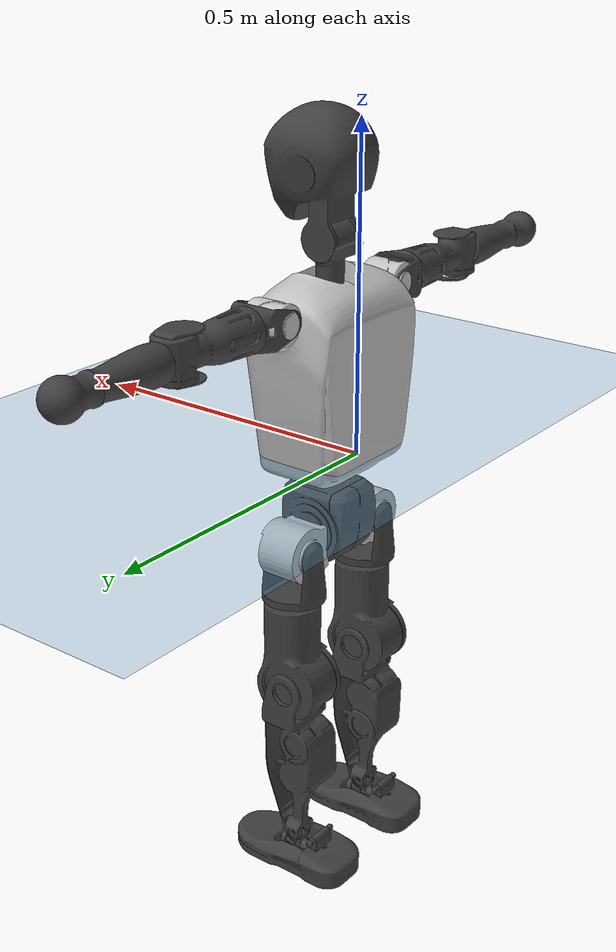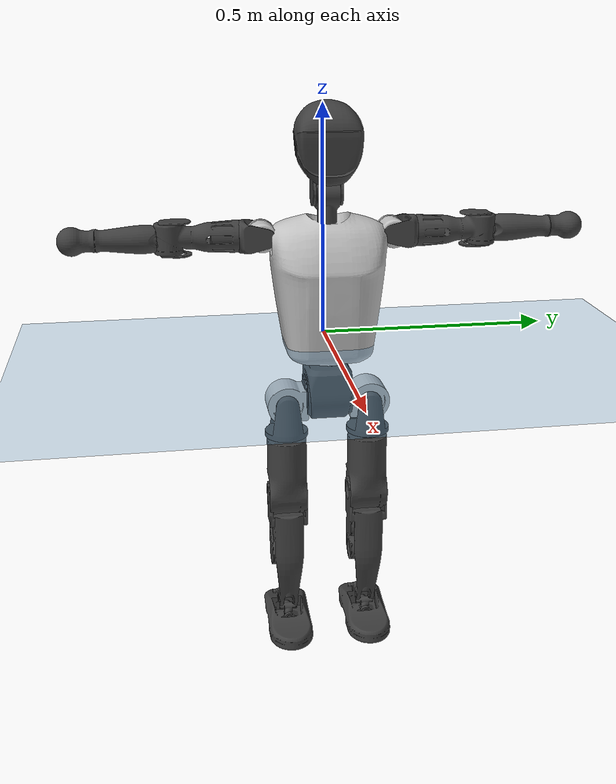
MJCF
<mujoco model="T1">
  <compiler angle="radian" assetdir="assets" balanceinertia="true" inertiafromgeom="false"/>

  <option timestep="0.005" density="1.2" viscosity="2e-05"/>

  <size nkey="1"/>

  <visual>
    <quality shadowsize="8192"/>
    <map shadowclip="0.5"/>
  </visual>

  <default>
    <default class="/">
      <joint armature="0.01" damping="0.01" frictionloss="0.1"/>
      <geom contype="0" conaffinity="0" group="1" solref="-1000 -80"/>
      <site size="0.01 0.005 0.005" group="5"/>
      <general forcelimited="true" biastype="affine" gainprm="25" biasprm="0 -25 -0.6"/>
      <default class="t1">
        <geom rgba="0.25 0.25 0.25 1"/>
        <default class="visual">
          <geom type="mesh" group="2"/>
        </default>
        <default class="collision">
          <geom group="3"/>
        </default>
        <default class="foot">
          <geom size="0.1115 0.05 0.015" type="box" condim="6" group="4" priority="1" solimp="0.015 1 0.015"/>
        </default>
        <default class="reward_collision_sphere">
          <geom group="5" rgba="1 0 0 1"/>
        </default>
      </default>
    </default>
  </default>

  <asset>
    <texture type="skybox" colorspace="auto" name="//unnamed_texture_0" builtin="gradient" rgb1="0.95 0.95 0.95" rgb2="0.95 0.95 0.95" width="100" height="600"/>
    <texture type="2d" colorspace="auto" name="texplane" builtin="checker" rgb1="0.345 0.575 0.748" rgb2="0.345 0.575 0.748" markrgb="1 1 1" width="512" height="512"/>
    <material name="MatPlane" class="/" texture="texplane" texuniform="true" texrepeat="2 2" specular="0.9"/>
    <mesh name="Trunk" class="/" file="Trunk.stl"/>
    <mesh name="H1" class="/" file="H1.stl"/>
    <mesh name="H2" class="/" file="H2.stl"/>
    <mesh name="AL1" class="/" file="AL1.stl"/>
    <mesh name="AL2" class="/" file="AL2.stl"/>
    <mesh name="AL3" class="/" file="AL3.stl"/>
    <mesh name="left_hand_link" class="/" file="left_hand_link.stl"/>
    <mesh name="AR1" class="/" file="AR1.stl"/>
    <mesh name="AR2" class="/" file="AR2.stl"/>
    <mesh name="AR3" class="/" file="AR3.stl"/>
    <mesh name="right_hand_link" class="/" file="right_hand_link.stl"/>
    <mesh name="Waist" class="/" file="Waist.stl"/>
    <mesh name="Hip_Pitch_Left" class="/" file="Hip_Pitch_Left.stl"/>
    <mesh name="Hip_Roll_Left" class="/" file="Hip_Roll_Left.stl"/>
    <mesh name="Hip_Yaw_Left" class="/" file="Hip_Yaw_Left.stl"/>
    <mesh name="Shank_Left" class="/" file="Shank_Left.stl"/>
    <mesh name="Ankle_Cross_Left" class="/" file="Ankle_Cross_Left.stl"/>
    <mesh name="left_foot_link" class="/" file="left_foot_link.stl"/>
    <mesh name="Hip_Pitch_Right" class="/" file="Hip_Pitch_Right.stl"/>
    <mesh name="Hip_Roll_Right" class="/" file="Hip_Roll_Right.stl"/>
    <mesh name="Hip_Yaw_Right" class="/" file="Hip_Yaw_Right.stl"/>
    <mesh name="Shank_Right" class="/" file="Shank_Right.stl"/>
    <mesh name="Ankle_Cross_Right" class="/" file="Ankle_Cross_Right.stl"/>
    <mesh name="right_foot_link" class="/" file="right_foot_link.stl"/>
  </asset>

  <worldbody>
    <geom name="floor" class="/" size="100 100 0.125" type="plane" group="0" material="MatPlane"/>
    <light name="toplight_shadow" class="/" pos="0 0 5" dir="0.0990148 0.0990148 -0.990148" type="directional" ambient="0.04 0.04 0.04" diffuse="0.55 0.55 0.55" specular="0.12 0.12 0.12"/>
    <light name="toplight_fill" class="/" pos="0 0 5" dir="0.0990148 0.0990148 -0.990148" type="directional" castshadow="false" ambient="0.04 0.04 0.04" diffuse="0.3 0.3 0.3" specular="0.08 0.08 0.08"/>
    <body name="trunk" childclass="t1" pos="0.000329337 0.000641182 -0.000755753" quat="1 -0.000348358 0.000221054 -7.54057e-05">
      <inertial pos="0.0459946 -0.000403067 0.111295" quat="0.999956 0.00178523 -0.0091854 -0.000263322" mass="9.24962" diaginertia="0.0376283 0.0387105 0.0755823"/>
      <joint name="//unnamed_joint_0" type="free" armature="0" damping="0" frictionloss="0"/>
      <geom name="//unnamed_geom_1" class="visual" rgba="0.76 0.76 0.76 1" mesh="Trunk"/>
      <geom name="//unnamed_geom_2" class="collision" size="0.0692969 0.0923959 0.138594" pos="0.0502191 0 0.127596" type="box"/>
      <geom name="//unnamed_geom_3" class="reward_collision_sphere" size="0.106255" pos="0.0502191 0 0.10633"/>
      <geom name="//unnamed_geom_4" class="reward_collision_sphere" size="0.0138594" pos="0.0502191 0.0740852 0"/>
      <geom name="//unnamed_geom_5" class="reward_collision_sphere" size="0.0138594" pos="0.0502191 -0.0740852 0"/>
      <geom name="//unnamed_geom_6" class="reward_collision_sphere" size="0.0138594" pos="0.0502191 0.0932602 0.191394"/>
      <geom name="//unnamed_geom_7" class="reward_collision_sphere" size="0.0138594" pos="0.0502191 -0.0932602 0.191394"/>
      <site name="imu" pos="0.00440331 0.00106747 -0.000860984" size="0.00923959"/>
      <camera name="track" pos="0 -1.74318 0" quat="0.707107 0.707107 0 0" mode="trackcom"/>
      <camera name="ego_camera" pos="0.102112 0 0.446586" quat="-0.5 -0.5 0.5 0.5"/>
      <body name="H1" pos="0.0521279 -0.000533496 0.258082" quat="1 -0.000176448 0.000113846 -0.000316566">
        <inertial pos="-0.00158628 -0.00161487 0.060185" quat="0.763808 -0.0118042 0.00456815 0.645319" mass="0.353613" diaginertia="0.00010028 0.000111894 0.000207194"/>
        <joint name="AAHead_yaw" pos="0 0 0" axis="-0.000505226 0.000777199 1" range="-1.55275 1.57794" armature="0.00890385" damping="0.00835494" frictionloss="0.0962681"/>
        <geom name="//unnamed_geom_8" class="visual" mesh="H1"/>
        <body name="H2" pos="-0.00111224 -0.000569462 0.0657598" quat="1 5.13904e-06 4.69866e-06 2.53778e-05">
          <inertial pos="0.00574471 0.000287164 0.104927" quat="0.9886 0.104152 -0.075735 -0.0780189" mass="0.502532" diaginertia="0.000840798 0.000969181 0.00235826"/>
          <joint name="Head_pitch" pos="0 0 0" axis="0.000856757 -0.999996 -0.00282158" range="-1.22906 0.336684" armature="0.00944289" damping="0.00607062" frictionloss="0.0930934"/>
          <geom name="//unnamed_geom_9" class="visual" mesh="H2"/>
          <geom name="//unnamed_geom_10" class="collision" size="0.0739167" pos="0.00836985 0 0.116963"/>
          <geom name="//unnamed_geom_11" class="reward_collision_sphere" size="0.0831563" pos="0.0167397 0 0.10633"/>
        </body>
      </body>
      <body name="AL1" pos="0.0486749 0.0937662 0.233433" quat="1 -7.85176e-05 0.000467325 -0.000241886">
        <inertial pos="-0.000577595 0.0393608 -0.000417723" quat="0.504216 0.495766 -0.504387 0.495557" mass="0.422813" diaginertia="0.000567732 0.000659526 0.000400307"/>
        <joint name="Left_Shoulder_Pitch" pos="0 0 0" axis="-0.000400767 1 -7.34242e-06" range="-3.30783 1.22505" armature="0.0090437" damping="0.00535164" frictionloss="0.0930375"/>
        <geom name="//unnamed_geom_12" class="visual" rgba="0.76 0.76 0.76 1" mesh="AL1"/>
        <body name="AL2" pos="0.00107196 0.0421545 0.000776704" quat="1 -0.000280992 -0.000128091 -0.00023833">
          <inertial pos="0.00282261 0.0323161 -0.000196283" quat="0.487996 0.511877 -0.487754 0.511799" mass="0.127386" diaginertia="0.000164698 0.000175326 0.000241944"/>
          <joint name="Left_Shoulder_Roll" pos="0 0 0" axis="-0.999999 -0.00104096 0.000169719" range="-1.57486 1.733" armature="0.00938508" damping="0.00386281" frictionloss="0.0916634"/>
          <geom name="//unnamed_geom_13" class="visual" mesh="AL2"/>
          <body name="AL3" pos="5.52255e-05 0.0537157 -6.07876e-05" quat="1 -4.81955e-05 7.67252e-06 -2.1255e-05">
            <inertial pos="-0.000308275 0.0748742 -0.000133051" quat="0.706414 0.707787 -0.00352165 0.00205952" mass="0.819433" diaginertia="0.00534069 0.00646004 0.000846403"/>
            <joint name="Left_Elbow_Pitch" pos="0 0 0" axis="-0.00347747 -0.999993 0.00159587" range="-2.25915 2.26185" armature="0.00925082" damping="0.00433248" frictionloss="0.0888532"/>
            <geom name="//unnamed_geom_14" class="visual" mesh="AL3"/>
            <geom name="//unnamed_geom_15" class="collision" size="0.0277188 0.0692969" pos="0 0.0435795 0" quat="0.707105 0.707108 0 0" type="cylinder"/>
            <geom name="//unnamed_geom_16" class="reward_collision_sphere" size="0.0332625"/>
            <body name="left_hand_link" pos="-0.000261567 0.128722 0.000523697" quat="1 0.000374547 -0.000252166 -0.000152262">
              <inertial pos="-5.43135e-05 0.0958558 0.00101077" quat="0.708049 0.706163 -0.00026321 -0.000448231" mass="0.255495" diaginertia="0.0033266 0.00407371 0.000293897"/>
              <joint name="Left_Elbow_Yaw" pos="0 0 0" axis="0.000153521 0.00211257 0.999998" range="-2.4446 0.00459944" armature="0.00910501" damping="0.0112389" frictionloss="0.0885025"/>
              <geom name="//unnamed_geom_17" class="visual" mesh="left_hand_link"/>
              <geom name="//unnamed_geom_18" class="collision" size="0.0277188 0.0808464" pos="0 0.113307 0" quat="0.707105 0.707108 0 0" type="cylinder"/>
              <geom name="//unnamed_geom_19" class="reward_collision_sphere" size="0.0461979"/>
              <geom name="//unnamed_geom_20" class="reward_collision_sphere" size="0.0323386" pos="0 0.095875 0"/>
              <geom name="//unnamed_geom_21" class="reward_collision_sphere" size="0.0323386" pos="0 0.187392 0"/>
            </body>
          </body>
        </body>
      </body>
      <body name="AR1" pos="0.0473816 -0.0920868 0.2327" quat="1 0.000207003 0.000277413 -1.60809e-05">
        <inertial pos="-0.00120839 -0.0393543 -0.000117166" quat="0.50478 0.495712 -0.503818 0.495615" mass="0.418059" diaginertia="0.000569973 0.000653286 0.000396468"/>
        <joint name="Right_Shoulder_Pitch" pos="0 0 0" axis="0.0002936 -0.999997 -0.00257937" stiffness="0.0008581" range="-1.23272 3.30835" armature="0.00964424" damping="0.00637745" frictionloss="0.0946082"/>
        <geom name="//unnamed_geom_22" class="visual" rgba="0.76 0.76 0.76 1" mesh="AR1"/>
        <body name="AR2" pos="-0.000985767 -0.0408729 -7.55133e-05" quat="1 -9.0948e-06 -5.05706e-05 2.52164e-05">
          <inertial pos="0.00311391 -0.0331177 0.000374253" quat="0.510522 0.491373 -0.511324 0.48628" mass="0.125587" diaginertia="0.000167216 0.00017415 0.000242318"/>
          <joint name="Right_Shoulder_Roll" pos="0 0 0" axis="-0.999989 0.000143625 0.00478039" range="-1.74562 1.56716" armature="0.00926406" damping="0.0060132" frictionloss="0.0925667"/>
          <geom name="//unnamed_geom_23" class="visual" mesh="AR2"/>
          <body name="AR3" pos="-0.00116602 -0.0528662 0.000801978" quat="1 -4.13137e-05 -6.23801e-05 1.79937e-05">
            <inertial pos="-0.000554284 -0.073691 -0.000114246" quat="0.707805 0.706408 5.7354e-06 1.15016e-05" mass="0.801537" diaginertia="0.00529131 0.00636979 0.000835639"/>
            <joint name="Right_Elbow_Pitch" pos="0 0 0" axis="-3.36439e-05 0.999999 0.00101915" range="-2.26779 2.26884" armature="0.00924304" damping="0.00889895" frictionloss="0.0928293"/>
            <geom name="//unnamed_geom_24" class="visual" mesh="AR3"/>
            <geom name="//unnamed_geom_25" class="collision" size="0.0277188 0.0692969" pos="0 -0.0435795 0" quat="0.707105 0.707108 0 0" type="cylinder"/>
            <geom name="//unnamed_geom_26" class="reward_collision_sphere" size="0.0332625"/>
            <body name="right_hand_link" pos="-0.0002027 -0.128201 -0.000412936" quat="1 0.000168445 0.000209933 -0.000174813">
              <inertial pos="-0.000895173 -0.095134 0.000517954" quat="0.706482 0.707728 0.000543064 0.00182856" mass="0.260819" diaginertia="0.00335401 0.00408716 0.000288914"/>
              <joint name="Right_Elbow_Yaw" pos="0 0 0" axis="-0.00488816 0.000961129 0.999988" range="0.000574903 2.44595" armature="0.00905035" damping="0.0075704" frictionloss="0.0939118"/>
              <geom name="//unnamed_geom_27" class="visual" mesh="right_hand_link"/>
              <geom name="//unnamed_geom_28" class="collision" size="0.0277188 0.0808464" pos="0 -0.113307 0" quat="0.707105 0.707108 0 0" type="cylinder"/>
              <geom name="//unnamed_geom_29" class="reward_collision_sphere" size="0.0461979"/>
              <geom name="//unnamed_geom_30" class="reward_collision_sphere" size="0.0323386" pos="0 -0.095875 0"/>
              <geom name="//unnamed_geom_31" class="reward_collision_sphere" size="0.0323386" pos="0 -0.187392 0"/>
            </body>
          </body>
        </body>
      </body>
      <body name="Waist" pos="0.0522608 -0.000852882 -0.122281" quat="1 -7.87446e-05 9.74426e-05 -0.000369922">
        <inertial pos="0.00221581 -0.000520132 0.00704473" quat="0.983875 0.00360457 -0.178778 0.00398708" mass="2.06035" diaginertia="0.00222419 0.00267478 0.0064593"/>
        <joint name="Waist" pos="0 0 0" axis="0.00165064 0.000290372 0.999999" range="-1.57132 1.57676" armature="0.00918583" damping="0.010444" frictionloss="0.094585"/>
        <geom name="//unnamed_geom_32" class="visual" mesh="Waist"/>
        <body name="Hip_Pitch_Left" pos="-0.000297836 0.092228 0.000492211" quat="1 -5.33251e-05 0.000100407 0.000196257">
          <inertial pos="0.00123706 -0.00718008 -0.0193315" quat="0.975212 0.220674 0.0162493 0.00118964" mass="0.79642" diaginertia="0.000738718 0.000735741 0.00169815"/>
          <joint name="Left_Hip_Pitch" pos="0 0 0" axis="-0.000730847 1 -0.000155344" range="-1.80022 1.56882" armature="0.00934315" damping="0.00632367" frictionloss="0.0905322"/>
          <geom name="//unnamed_geom_33" class="visual" rgba="0.76 0.76 0.76 1" mesh="Hip_Pitch_Left"/>
          <body name="Hip_Roll_Left" pos="-0.000175873 0.000238 -0.0216126" quat="1 -0.000319315 0.000102512 0.000204574">
            <inertial pos="0.00198293 -0.000533274 -0.0572082" quat="0.708895 -0.00547451 -0.00927121 0.705232" mass="0.301159" diaginertia="0.000711655 0.00076152 0.000691791"/>
            <joint name="Left_Hip_Roll" pos="0 0 0" axis="-0.999997 0.00200332 -0.00104563" stiffness="0.00189498" range="-1.57247 0.193203" armature="0.00912525" damping="0.0106412" frictionloss="0.0962997"/>
            <geom name="//unnamed_geom_34" class="visual" mesh="Hip_Roll_Left"/>
            <geom name="//unnamed_geom_35" class="reward_collision_sphere" size="0.0508177"/>
            <body name="Hip_Yaw_Left" pos="0.00165755 -0.000810752 -0.088196" quat="1 -1.36838e-05 3.35066e-05 -1.14969e-05">
              <inertial pos="-0.00558885 -0.000542081 -0.0950759" quat="0.696647 -0.0349104 -0.0318953 0.715854" mass="1.73739" diaginertia="0.0106447 0.0128917 0.0035568"/>
              <joint name="Left_Hip_Yaw" pos="0 0 0" axis="-0.0028214 -0.00101072 -0.999996" stiffness="0.00196398" range="-1.01678 1.02012" armature="0.00935529" damping="0.00871167" frictionloss="0.0930166"/>
              <geom name="//unnamed_geom_36" class="visual" mesh="Hip_Yaw_Left"/>
              <geom name="//unnamed_geom_37" class="collision" size="0.0461979 0.0739167" type="cylinder"/>
              <body name="Shank_Left" pos="-0.0119511 0.000135982 -0.142568" quat="1 -8.31926e-05 2.40782e-05 -2.02689e-05">
                <inertial pos="-0.00462052 0.000313166 -0.132238" quat="0.997606 0.00121703 -0.0240657 0.064813" mass="1.36976" diaginertia="0.0144078 0.0173711 0.00255133"/>
                <joint name="Left_Knee_Pitch" pos="0 0 0" axis="-0.00153064 0.999999 0.000388068" range="-0.0160947 2.34227" armature="0.00926219" damping="0.00505295" frictionloss="0.0965445"/>
                <geom name="//unnamed_geom_38" class="visual" mesh="Shank_Left"/>
                <geom name="//unnamed_geom_39" class="collision" size="0.0461979 0.0692969" pos="0 0 -0.127596" type="cylinder"/>
                <geom name="//unnamed_geom_40" class="reward_collision_sphere" size="0.0600573"/>
                <body name="Ankle_Cross_Left" pos="7.90491e-05 0.000352415 -0.297022" quat="1 -2.03594e-05 7.84298e-05 5.47388e-05">
                  <inertial pos="-0.00268371 0.000365577 -0.00936491" quat="0.442333 0.549777 0.552262 0.443952" mass="0.0576413" diaginertia="1.16948e-05 1.27071e-05 1.52527e-05"/>
                  <joint name="Left_Ankle_Pitch" pos="0 0 0" axis="0.000425345 0.999998 0.00212831" range="-0.866494 0.340155" armature="0.00923533" damping="0.00586378" frictionloss="0.0951922"/>
                  <geom name="//unnamed_geom_41" class="visual" mesh="Ankle_Cross_Left"/>
                  <body name="left_foot_link" pos="-0.000405316 -0.000875373 -0.0130071" quat="1 6.23086e-05 4.57379e-05 -0.000263266">
                    <inertial pos="-0.000249614 0.000286604 -0.00943415" quat="0.00059422 0.618527 -0.000678956 0.785763" mass="0.537979" diaginertia="0.00109969 0.00119131 0.00297818"/>
                    <joint name="Left_Ankle_Roll" pos="0 0 0" axis="-0.999994 0.000349887 -0.0034041" range="-0.445803 0.455428" armature="0.00925182" damping="0.0109382" frictionloss="0.0918215"/>
                    <geom name="//unnamed_geom_42" class="visual" mesh="left_foot_link"/>
                    <geom name="left_foot" class="foot" size="0.101854 0.0471839 0.0138111" pos="0.00836985 0 -0.0159495"/>
                    <geom name="//unnamed_geom_44" class="reward_collision_sphere" size="0.0480458" pos="0.00836985 0 -0.0159495"/>
                    <geom name="//unnamed_geom_45" class="reward_collision_sphere" size="0.0277188" pos="0.0795135 -0.0200466 -0.0159495"/>
                    <geom name="//unnamed_geom_46" class="reward_collision_sphere" size="0.0277188" pos="-0.0585889 -0.0200466 -0.0159495"/>
                    <site name="left_foot" class="foot" pos="0.00836985 0 -0.0159495" size="0.00923959"/>
                  </body>
                </body>
              </body>
            </body>
          </body>
        </body>
        <body name="Hip_Pitch_Right" pos="0.000273112 -0.0920276 -0.000351161" quat="1 -3.01864e-05 -0.000118489 -0.000148393">
          <inertial pos="0.00126405 0.00630697 -0.0195789" quat="0.973687 -0.227359 0.0151883 -0.00322074" mass="0.795851" diaginertia="0.000733754 0.000726045 0.0016702"/>
          <joint name="Right_Hip_Pitch" pos="0 0 0" axis="0.000191622 -0.999998 0.00183053" range="-1.57254 1.80307" armature="0.00936914" damping="0.00996819" frictionloss="0.0886062"/>
          <geom name="//unnamed_geom_47" class="visual" rgba="0.76 0.76 0.76 1" mesh="Hip_Pitch_Right"/>
          <body name="Hip_Roll_Right" pos="-0.000525627 -0.000482785 -0.0205907" quat="1 -0.000180795 0.00016857 0.000100676">
            <inertial pos="0.0016455 0.00062903 -0.0564021" quat="0.7088 -0.00715649 -0.00828 0.705325" mass="0.302984" diaginertia="0.000716055 0.000764806 0.000703769"/>
            <joint name="Right_Hip_Roll" pos="0 0 0" axis="-0.999996 -0.00196186 0.001871" stiffness="0.00128133" range="-0.18399 1.56007" armature="0.00887794" damping="0.00593936" frictionloss="0.095752"/>
            <geom name="//unnamed_geom_48" class="visual" mesh="Hip_Roll_Right"/>
            <geom name="//unnamed_geom_49" class="reward_collision_sphere" size="0.0508177"/>
            <body name="Hip_Yaw_Right" pos="0.0006848 0.000156962 -0.0872982" quat="1 6.1709e-05 -3.02962e-05 7.77285e-05">
              <inertial pos="-0.00572293 -3.17347e-05 -0.0947132" quat="0.714538 -0.0320172 -0.0358685 0.697942" mass="1.71802" diaginertia="0.0106675 0.0126499 0.00353971"/>
              <joint name="Right_Hip_Yaw" pos="0 0 0" axis="-0.00212266 -1.63113e-05 -0.999998" range="-1.01322 0.999767" armature="0.0090466" damping="0.0119841" frictionloss="0.0902643"/>
              <geom name="//unnamed_geom_50" class="visual" mesh="Hip_Yaw_Right"/>
              <geom name="//unnamed_geom_51" class="collision" size="0.0461979 0.0739167" type="cylinder"/>
              <body name="Shank_Right" pos="-0.0111572 -5.40669e-05 -0.142161" quat="1 7.6192e-06 -5.69707e-06 3.33276e-06">
                <inertial pos="-0.00495133 0.000694475 -0.130357" quat="0.9993 -0.00432621 -0.0222572 -0.0297517" mass="1.41898" diaginertia="0.0146754 0.0176982 0.00271274"/>
                <joint name="Right_Knee_Pitch" pos="0 0 0" axis="0.00462286 -0.999989 0.000465588" range="-2.34061 -0.00646679" armature="0.00944475" damping="0.00640209" frictionloss="0.0896091"/>
                <geom name="//unnamed_geom_52" class="visual" mesh="Shank_Right"/>
                <geom name="//unnamed_geom_53" class="collision" size="0.0461979 0.0692969" pos="0 0 -0.127596" type="cylinder"/>
                <geom name="//unnamed_geom_54" class="reward_collision_sphere" size="0.0600573"/>
                <body name="Ankle_Cross_Right" pos="-0.000585416 -0.000671729 -0.297262" quat="1 -0.000157604 8.34126e-05 -0.000172109">
                  <inertial pos="-0.0028852 -0.000518438 -0.00840357" quat="0.44091 0.553245 0.549767 0.444157" mass="0.0581251" diaginertia="1.17965e-05 1.29342e-05 1.55794e-05"/>
                  <joint name="Right_Ankle_Pitch" pos="0 0 0" axis="0.00241627 -0.999991 0.00338087" stiffness="0.0006362" range="-0.349693 0.864263" armature="0.00942786" damping="0.0060839" frictionloss="0.0933784"/>
                  <geom name="//unnamed_geom_55" class="visual" mesh="Ankle_Cross_Right"/>
                  <body name="right_foot_link" pos="0.000103972 -0.000305201 -0.0135903" quat="1 1.30868e-05 -1.71261e-05 0.000103084">
                    <inertial pos="0.000311832 -0.000140859 -0.0105784" quat="-0.00166216 0.622865 0.00192358 0.782325" mass="0.538231" diaginertia="0.00111721 0.00120306 0.00299464"/>
                    <joint name="Right_Ankle_Roll" pos="0 0 0" axis="-1 0.000101653 -0.000751598" range="-0.441414 0.442051" armature="0.0092108" damping="0.00845339" frictionloss="0.0920801"/>
                    <geom name="//unnamed_geom_56" class="visual" mesh="right_foot_link"/>
                    <geom name="right_foot" class="foot" size="0.100097 0.0466056 0.0144452" pos="0.00836985 0 -0.0159495"/>
                    <geom name="//unnamed_geom_58" class="reward_collision_sphere" size="0.0369583"/>
                    <geom name="//unnamed_geom_59" class="reward_collision_sphere" size="0.0277188" pos="0.00836985 0 -0.0159495"/>
                    <geom name="//unnamed_geom_60" class="reward_collision_sphere" size="0.0277188" pos="0.0795135 0.0200466 -0.0159495"/>
                    <geom name="//unnamed_geom_61" class="reward_collision_sphere" size="0.0277188" pos="-0.0585889 0.0200466 -0.0159495"/>
                    <site name="right_foot" class="foot" pos="0.00836985 0 -0.0159495" size="0.00923959"/>
                  </body>
                </body>
              </body>
            </body>
          </body>
        </body>
      </body>
    </body>
  </worldbody>

  <contact>
    <pair class="/" geom1="floor" geom2="left_foot" name="//unnamed_contact_0"/>
    <pair class="/" geom1="floor" geom2="right_foot" name="//unnamed_contact_1"/>
  </contact>

  <actuator>
    <general name="AAHead_yaw" class="/" joint="AAHead_yaw" forcerange="-6.54579 6.54579" gainprm="22.9049" biasprm="0 -22.9049 -0.552339"/>
    <general name="Head_pitch" class="/" joint="Head_pitch" forcerange="-6.43232 6.43232" gainprm="22.9049" biasprm="0 -22.9049 -0.552339"/>
    <general name="Left_Shoulder_Pitch" class="/" joint="Left_Shoulder_Pitch" forcerange="-16.6384 16.6384" gainprm="22.9049" biasprm="0 -22.9049 -0.552339"/>
    <general name="Left_Shoulder_Roll" class="/" joint="Left_Shoulder_Roll" forcerange="-16.5372 16.5372" gainprm="22.9049" biasprm="0 -22.9049 -0.552339"/>
    <general name="Left_Elbow_Pitch" class="/" joint="Left_Elbow_Pitch" forcerange="-16.2622 16.2622" gainprm="22.9049" biasprm="0 -22.9049 -0.552339"/>
    <general name="Left_Elbow_Yaw" class="/" joint="Left_Elbow_Yaw" forcerange="-17.0932 17.0932" gainprm="22.9049" biasprm="0 -22.9049 -0.552339"/>
    <general name="Right_Shoulder_Pitch" class="/" joint="Right_Shoulder_Pitch" forcerange="-16.7206 16.7206" gainprm="22.9049" biasprm="0 -22.9049 -0.552339"/>
    <general name="Right_Shoulder_Roll" class="/" joint="Right_Shoulder_Roll" forcerange="-16.1947 16.1947" gainprm="22.9049" biasprm="0 -22.9049 -0.552339"/>
    <general name="Right_Elbow_Pitch" class="/" joint="Right_Elbow_Pitch" forcerange="-16.1328 16.1328" gainprm="22.9049" biasprm="0 -22.9049 -0.552339"/>
    <general name="Right_Elbow_Yaw" class="/" joint="Right_Elbow_Yaw" forcerange="-17.0145 17.0145" gainprm="22.9049" biasprm="0 -22.9049 -0.552339"/>
    <general name="Waist" class="/" joint="Waist" forcerange="-27.8585 27.8585" gainprm="22.9049" biasprm="0 -22.9049 -0.552339"/>
    <general name="Left_Hip_Pitch" class="/" joint="Left_Hip_Pitch" forcerange="-40.1863 40.1863" gainprm="22.9049" biasprm="0 -22.9049 -0.552339"/>
    <general name="Left_Hip_Roll" class="/" joint="Left_Hip_Roll" forcerange="-27.5547 27.5547" gainprm="22.9049" biasprm="0 -22.9049 -0.552339"/>
    <general name="Left_Hip_Yaw" class="/" joint="Left_Hip_Yaw" forcerange="-27.8859 27.8859" gainprm="22.9049" biasprm="0 -22.9049 -0.552339"/>
    <general name="Left_Knee_Pitch" class="/" joint="Left_Knee_Pitch" forcerange="-55.0634 55.0634" gainprm="22.9049" biasprm="0 -22.9049 -0.552339"/>
    <general name="Left_Ankle_Pitch" class="/" joint="Left_Ankle_Pitch" forcerange="-18.7356 18.7356" gainprm="22.9049" biasprm="0 -22.9049 -0.552339"/>
    <general name="Left_Ankle_Roll" class="/" joint="Left_Ankle_Roll" forcerange="-13.8457 13.8457" gainprm="22.9049" biasprm="0 -22.9049 -0.552339"/>
    <general name="Right_Hip_Pitch" class="/" joint="Right_Hip_Pitch" forcerange="-42.0856 42.0856" gainprm="22.9049" biasprm="0 -22.9049 -0.552339"/>
    <general name="Right_Hip_Roll" class="/" joint="Right_Hip_Roll" forcerange="-27.7563 27.7563" gainprm="22.9049" biasprm="0 -22.9049 -0.552339"/>
    <general name="Right_Hip_Yaw" class="/" joint="Right_Hip_Yaw" forcerange="-27.4927 27.4927" gainprm="22.9049" biasprm="0 -22.9049 -0.552339"/>
    <general name="Right_Knee_Pitch" class="/" joint="Right_Knee_Pitch" forcerange="-56.8125 56.8125" gainprm="22.9049" biasprm="0 -22.9049 -0.552339"/>
    <general name="Right_Ankle_Pitch" class="/" joint="Right_Ankle_Pitch" forcerange="-19.0038 19.0038" gainprm="22.9049" biasprm="0 -22.9049 -0.552339"/>
    <general name="Right_Ankle_Roll" class="/" joint="Right_Ankle_Roll" forcerange="-13.4167 13.4167" gainprm="22.9049" biasprm="0 -22.9049 -0.552339"/>
  </actuator>

  <sensor>
    <gyro site="imu" name="imu_angular_velocity"/>
    <velocimeter site="imu" name="imu_linear_velocity"/>
    <framelinvel objtype="site" objname="left_foot" name="left_foot_global_linear_velocity"/>
    <framelinvel objtype="site" objname="right_foot" name="right_foot_global_linear_velocity"/>
  </sensor>

  <keyframe>
    <key name="home" qpos="0 0 0.6385 1 0 0 0 0 0 0 1.4 0 -0.4 0 -1.4 0 0.4 0 -0.4 0 0 0.8 -0.4 0 0.4 0 0 -0.8 0.4 0"/>
  </keyframe>
</mujoco>
